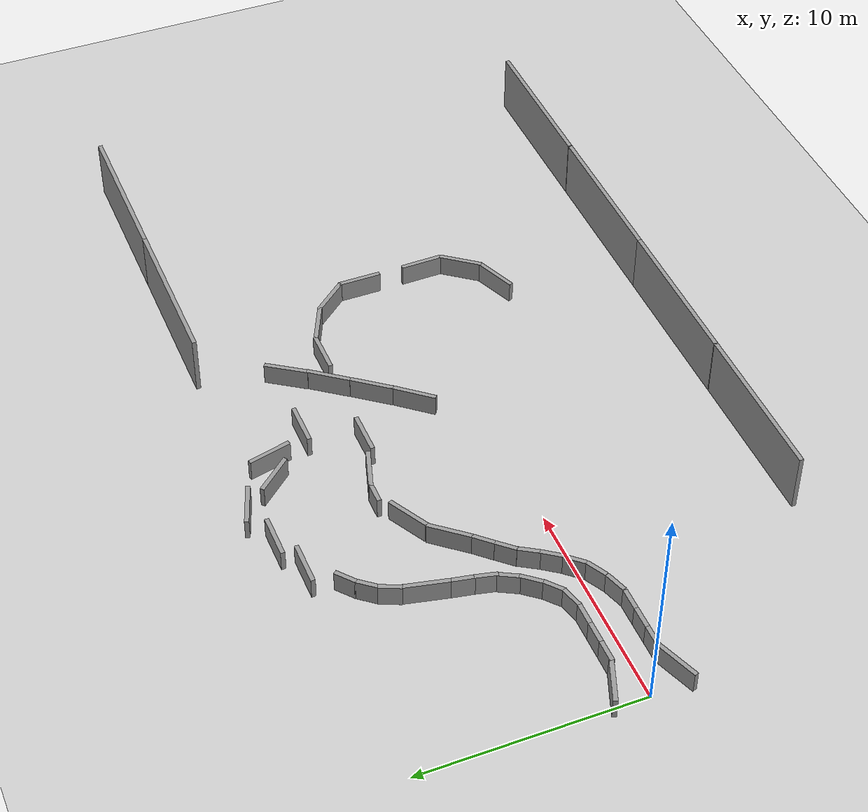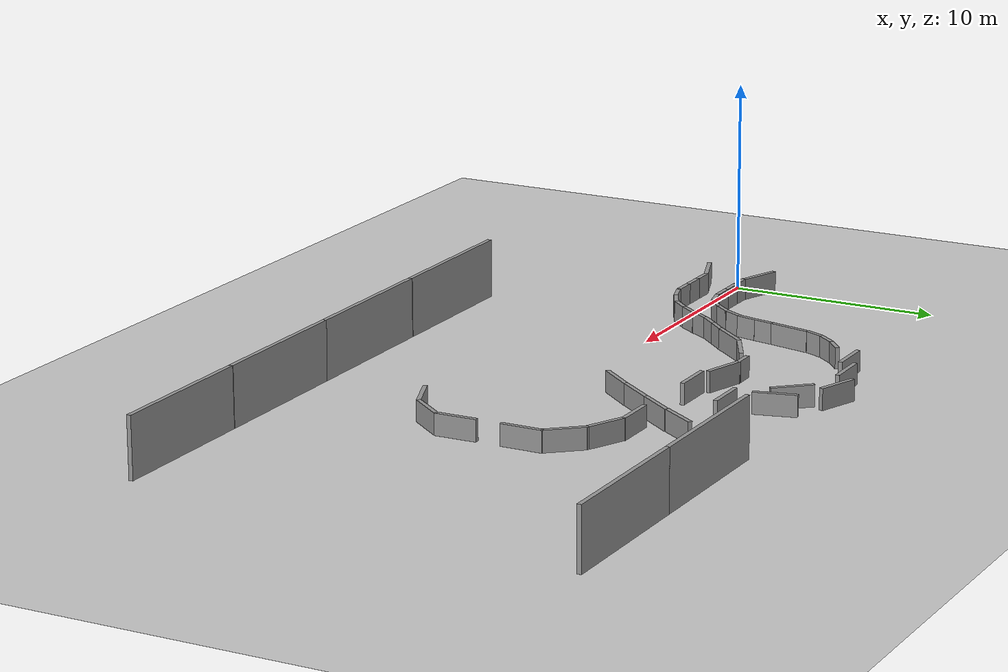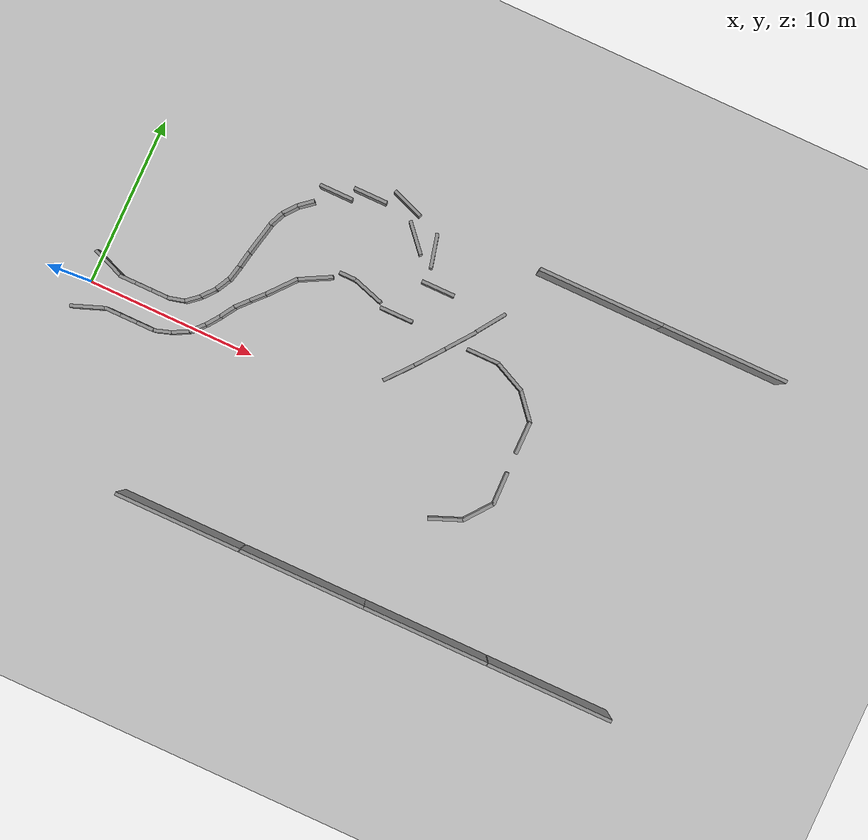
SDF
<sdf version="1.4">
 <world name="default">
  <light name="sun" type="directional">
   <pose>0 0 10 0 -0 0</pose>
   <diffuse>0.8 0.8 0.8 1</diffuse>
   <specular>0.2 0.2 0.2 1</specular>
   <attenuation>
    <range>1000</range>
    <constant>0.9</constant>
    <linear>0.01</linear>
    <quadratic>0.001</quadratic>
   </attenuation>
   <direction>-0.5 0.1 -0.9</direction>
  </light>
  <model name="ground_plane">
   <static>1</static>
   <link name="link">
    <collision name="collision">
     <geometry><plane><normal>0 0 1</normal><size>100 100</size></plane></geometry>
     <surface><friction><ode><mu>100</mu><mu2>50</mu2></ode></friction></surface>
    </collision>
    <visual name="visual">
     <cast_shadows>0</cast_shadows>
     <geometry><plane><normal>0 0 1</normal><size>100 100</size></plane></geometry>
     <material>
      <script><uri>file://media/materials/scripts/gazebo.material</uri><name>Gazebo/Grey</name></script>
     </material>
    </visual>
    <velocity_decay><linear>0</linear><angular>0</angular></velocity_decay>
   </link>
  </model>
  <physics type="ode">
   <max_step_size>0.001</max_step_size>
   <real_time_factor>1</real_time_factor>
   <real_time_update_rate>1000</real_time_update_rate>
   <gravity>0 0 -9.8</gravity>
  </physics>
  <scene><ambient>0.4 0.4 0.4 1</ambient><background>0.7 0.7 0.7 1</background><shadows>1</shadows></scene>
  <spherical_coordinates>
   <surface_model>EARTH_WGS84</surface_model>
   <latitude_deg>0</latitude_deg>
   <longitude_deg>0</longitude_deg>
   <elevation>0</elevation>
   <heading_deg>0</heading_deg>
  </spherical_coordinates>
  <model name="grey_wall">
   <static>1</static>
   <link name="link">
    <pose>0 0 0.5 0 -0 0</pose>
    <collision name="collision"><geometry><box><size>1 0.2 1</size></box></geometry></collision>
    <visual name="visual">
     <cast_shadows>0</cast_shadows>
     <geometry><box><size>1 0.2 1</size></box></geometry>
     <material>
      <script>
       <uri>model://grey_wall/materials/scripts</uri>
       <uri>model://grey_wall/materials/textures</uri>
       <name>vrc/grey_wall</name>
      </script>
     </material>
    </visual>
    <velocity_decay><linear>0</linear><angular>0</angular></velocity_decay>
   </link>
   <pose>2 1 0 0 -0 0</pose>
  </model>
  <model name="grey_wall_1">
   <static>1</static>
   <link name="link">
    <pose>0 0 0.5 0 -0 0</pose>
    <collision name="collision"><geometry><box><size>1 0.2 1</size></box></geometry></collision>
    <visual name="visual">
     <cast_shadows>0</cast_shadows>
     <geometry><box><size>1 0.2 1</size></box></geometry>
     <material>
      <script>
       <uri>model://grey_wall/materials/scripts</uri>
       <uri>model://grey_wall/materials/textures</uri>
       <name>vrc/grey_wall</name>
      </script>
     </material>
    </visual>
    <velocity_decay><linear>0</linear><angular>0</angular></velocity_decay>
   </link>
   <pose>2 -1 0 0 -0 0</pose>
  </model>
  <model name="grey_wall_2">
   <static>1</static>
   <link name="link">
    <pose>0 0 0.5 0 -0 0</pose>
    <collision name="collision"><geometry><box><size>1 0.2 1</size></box></geometry></collision>
    <visual name="visual">
     <cast_shadows>0</cast_shadows>
     <geometry><box><size>1 0.2 1</size></box></geometry>
     <material>
      <script>
       <uri>model://grey_wall/materials/scripts</uri>
       <uri>model://grey_wall/materials/textures</uri>
       <name>vrc/grey_wall</name>
      </script>
     </material>
    </visual>
    <velocity_decay><linear>0</linear><angular>0</angular></velocity_decay>
   </link>
   <pose>3 -1 0 0 -0 0</pose>
  </model>
  <model name="grey_wall_3">
   <static>1</static>
   <link name="link">
    <pose>0 0 0.5 0 -0 0</pose>
    <collision name="collision"><geometry><box><size>1 0.2 1</size></box></geometry></collision>
    <visual name="visual">
     <cast_shadows>0</cast_shadows>
     <geometry><box><size>1 0.2 1</size></box></geometry>
     <material>
      <script>
       <uri>model://grey_wall/materials/scripts</uri>
       <uri>model://grey_wall/materials/textures</uri>
       <name>vrc/grey_wall</name>
      </script>
     </material>
    </visual>
    <velocity_decay><linear>0</linear><angular>0</angular></velocity_decay>
   </link>
   <pose>3 1 0 0 -0 0</pose>
  </model>
  <model name="grey_wall_4">
   <static>1</static>
   <link name="link">
    <pose>0 0 0.5 0 -0 0</pose>
    <collision name="collision"><geometry><box><size>1 0.2 1</size></box></geometry></collision>
    <visual name="visual">
     <cast_shadows>0</cast_shadows>
     <geometry><box><size>1 0.2 1</size></box></geometry>
     <material>
      <script>
       <uri>model://grey_wall/materials/scripts</uri>
       <uri>model://grey_wall/materials/textures</uri>
       <name>vrc/grey_wall</name>
      </script>
     </material>
    </visual>
    <velocity_decay><linear>0</linear><angular>0</angular></velocity_decay>
   </link>
   <pose>4 -1 0 0 -0 0</pose>
  </model>
  <model name="grey_wall_5">
   <static>1</static>
   <link name="link">
    <pose>0 0 0.5 0 -0 0</pose>
    <collision name="collision"><geometry><box><size>1 0.2 1</size></box></geometry></collision>
    <visual name="visual">
     <cast_shadows>0</cast_shadows>
     <geometry><box><size>1 0.2 1</size></box></geometry>
     <material>
      <script>
       <uri>model://grey_wall/materials/scripts</uri>
       <uri>model://grey_wall/materials/textures</uri>
       <name>vrc/grey_wall</name>
      </script>
     </material>
    </visual>
    <velocity_decay><linear>0</linear><angular>0</angular></velocity_decay>
   </link>
   <pose>4 1 0 0 -0 0</pose>
  </model>
  <model name="grey_wall_6">
   <static>1</static>
   <link name="link">
    <pose>0 0 0.5 0 -0 0</pose>
    <collision name="collision"><geometry><box><size>1 0.2 1</size></box></geometry></collision>
    <visual name="visual">
     <cast_shadows>0</cast_shadows>
     <geometry><box><size>1 0.2 1</size></box></geometry>
     <material>
      <script>
       <uri>model://grey_wall/materials/scripts</uri>
       <uri>model://grey_wall/materials/textures</uri>
       <name>vrc/grey_wall</name>
      </script>
     </material>
    </visual>
    <velocity_decay><linear>0</linear><angular>0</angular></velocity_decay>
   </link>
   <pose>5.01734 -0.848768 0 0 -0 0.314202</pose>
  </model>
  <model name="grey_wall_7">
   <static>1</static>
   <link name="link">
    <pose>0 0 0.5 0 -0 0</pose>
    <collision name="collision"><geometry><box><size>1 0.2 1</size></box></geometry></collision>
    <visual name="visual">
     <cast_shadows>0</cast_shadows>
     <geometry><box><size>1 0.2 1</size></box></geometry>
     <material>
      <script>
       <uri>model://grey_wall/materials/scripts</uri>
       <uri>model://grey_wall/materials/textures</uri>
       <name>vrc/grey_wall</name>
      </script>
     </material>
    </visual>
    <velocity_decay><linear>0</linear><angular>0</angular></velocity_decay>
   </link>
   <pose>4.95446 1.11053 0 0 -0 0.247876</pose>
  </model>
  <model name="grey_wall_8">
   <static>1</static>
   <link name="link">
    <pose>0 0 0.5 0 -0 0</pose>
    <collision name="collision"><geometry><box><size>1 0.2 1</size></box></geometry></collision>
    <visual name="visual">
     <cast_shadows>0</cast_shadows>
     <geometry><box><size>1 0.2 1</size></box></geometry>
     <material>
      <script>
       <uri>model://grey_wall/materials/scripts</uri>
       <uri>model://grey_wall/materials/textures</uri>
       <name>vrc/grey_wall</name>
      </script>
     </material>
    </visual>
    <velocity_decay><linear>0</linear><angular>0</angular></velocity_decay>
   </link>
   <pose>5.94371 -0.455026 0 0 -0 0.490034</pose>
  </model>
  <model name="grey_wall_9">
   <static>1</static>
   <link name="link">
    <pose>0 0 0.5 0 -0 0</pose>
    <collision name="collision"><geometry><box><size>1 0.2 1</size></box></geometry></collision>
    <visual name="visual">
     <cast_shadows>0</cast_shadows>
     <geometry><box><size>1 0.2 1</size></box></geometry>
     <material>
      <script>
       <uri>model://grey_wall/materials/scripts</uri>
       <uri>model://grey_wall/materials/textures</uri>
       <name>vrc/grey_wall</name>
      </script>
     </material>
    </visual>
    <velocity_decay><linear>0</linear><angular>0</angular></velocity_decay>
   </link>
   <pose>5.78683 1.528 0 0 -0 0.704091</pose>
  </model>
  <model name="grey_wall_10">
   <static>1</static>
   <link name="link">
    <pose>0 0 0.5 0 -0 0</pose>
    <collision name="collision"><geometry><box><size>1 0.2 1</size></box></geometry></collision>
    <visual name="visual">
     <cast_shadows>0</cast_shadows>
     <geometry><box><size>1 0.2 1</size></box></geometry>
     <material>
      <script>
       <uri>model://grey_wall/materials/scripts</uri>
       <uri>model://grey_wall/materials/textures</uri>
       <name>vrc/grey_wall</name>
      </script>
     </material>
    </visual>
    <velocity_decay><linear>0</linear><angular>0</angular></velocity_decay>
   </link>
   <pose>6.71659 0.147546 0 0 -0 0.835488</pose>
  </model>
  <model name="grey_wall_11">
   <static>1</static>
   <link name="link">
    <pose>0 0 0.5 0 -0 0</pose>
    <collision name="collision"><geometry><box><size>1 0.2 1</size></box></geometry></collision>
    <visual name="visual">
     <cast_shadows>0</cast_shadows>
     <geometry><box><size>1 0.2 1</size></box></geometry>
     <material>
      <script>
       <uri>model://grey_wall/materials/scripts</uri>
       <uri>model://grey_wall/materials/textures</uri>
       <name>vrc/grey_wall</name>
      </script>
     </material>
    </visual>
    <velocity_decay><linear>0</linear><angular>0</angular></velocity_decay>
   </link>
   <pose>6.44136 2.2078 0 0 -0 0.880043</pose>
  </model>
  <model name="grey_wall_0">
   <static>1</static>
   <link name="link">
    <pose>0 0 0.5 0 -0 0</pose>
    <collision name="collision"><geometry><box><size>1 0.2 1</size></box></geometry></collision>
    <visual name="visual">
     <cast_shadows>0</cast_shadows>
     <geometry><box><size>1 0.2 1</size></box></geometry>
     <material>
      <script>
       <uri>model://grey_wall/materials/scripts</uri>
       <uri>model://grey_wall/materials/textures</uri>
       <name>vrc/grey_wall</name>
      </script>
     </material>
    </visual>
    <velocity_decay><linear>0</linear><angular>0</angular></velocity_decay>
   </link>
   <pose>7.33347 0.891377 0 0 -0 0.944963</pose>
  </model>
  <model name="grey_wall_12">
   <static>1</static>
   <link name="link">
    <pose>0 0 0.5 0 -0 0</pose>
    <collision name="collision"><geometry><box><size>1 0.2 1</size></box></geometry></collision>
    <visual name="visual">
     <cast_shadows>0</cast_shadows>
     <geometry><box><size>1 0.2 1</size></box></geometry>
     <material>
      <script>
       <uri>model://grey_wall/materials/scripts</uri>
       <uri>model://grey_wall/materials/textures</uri>
       <name>vrc/grey_wall</name>
      </script>
     </material>
    </visual>
    <velocity_decay><linear>0</linear><angular>0</angular></velocity_decay>
   </link>
   <pose>6.93852 2.95464 0 0 -0 1.07819</pose>
  </model>
  <model name="grey_wall_13">
   <static>1</static>
   <link name="link">
    <pose>0 0 0.5 0 -0 0</pose>
    <collision name="collision"><geometry><box><size>1 0.2 1</size></box></geometry></collision>
    <visual name="visual">
     <cast_shadows>0</cast_shadows>
     <geometry><box><size>1 0.2 1</size></box></geometry>
     <material>
      <script>
       <uri>model://grey_wall/materials/scripts</uri>
       <uri>model://grey_wall/materials/textures</uri>
       <name>vrc/grey_wall</name>
      </script>
     </material>
    </visual>
    <velocity_decay><linear>0</linear><angular>0</angular></velocity_decay>
   </link>
   <pose>7.86044 1.67629 0 0 -0 1.01143</pose>
  </model>
  <model name="grey_wall_14">
   <static>1</static>
   <link name="link">
    <pose>0 0 0.5 0 -0 0</pose>
    <collision name="collision"><geometry><box><size>1 0.2 1</size></box></geometry></collision>
    <visual name="visual">
     <cast_shadows>0</cast_shadows>
     <geometry><box><size>1 0.2 1</size></box></geometry>
     <material>
      <script>
       <uri>model://grey_wall/materials/scripts</uri>
       <uri>model://grey_wall/materials/textures</uri>
       <name>vrc/grey_wall</name>
      </script>
     </material>
    </visual>
    <velocity_decay><linear>0</linear><angular>0</angular></velocity_decay>
   </link>
   <pose>8.43573 2.44586 0 0 -0 0.825692</pose>
  </model>
  <model name="grey_wall_15">
   <static>1</static>
   <link name="link">
    <pose>0 0 0.5 0 -0 0</pose>
    <collision name="collision"><geometry><box><size>1 0.2 1</size></box></geometry></collision>
    <visual name="visual">
     <cast_shadows>0</cast_shadows>
     <geometry><box><size>1 0.2 1</size></box></geometry>
     <material>
      <script>
       <uri>model://grey_wall/materials/scripts</uri>
       <uri>model://grey_wall/materials/textures</uri>
       <name>vrc/grey_wall</name>
      </script>
     </material>
    </visual>
    <velocity_decay><linear>0</linear><angular>0</angular></velocity_decay>
   </link>
   <pose>7.287 3.81575 0 0 -0 1.34265</pose>
  </model>
  <model name="grey_wall_16">
   <static>1</static>
   <link name="link">
    <pose>0 0 0.5 0 -0 0</pose>
    <collision name="collision"><geometry><box><size>1 0.2 1</size></box></geometry></collision>
    <visual name="visual">
     <cast_shadows>0</cast_shadows>
     <geometry><box><size>1 0.2 1</size></box></geometry>
     <material>
      <script>
       <uri>model://grey_wall/materials/scripts</uri>
       <uri>model://grey_wall/materials/textures</uri>
       <name>vrc/grey_wall</name>
      </script>
     </material>
    </visual>
    <velocity_decay><linear>0</linear><angular>0</angular></velocity_decay>
   </link>
   <pose>9.09227 3.15251 0 0 -0 0.813159</pose>
  </model>
  <model name="grey_wall_17">
   <static>1</static>
   <link name="link">
    <pose>0 0 0.5 0 -0 0</pose>
    <collision name="collision"><geometry><box><size>1 0.2 1</size></box></geometry></collision>
    <visual name="visual">
     <cast_shadows>0</cast_shadows>
     <geometry><box><size>1 0.2 1</size></box></geometry>
     <material>
      <script>
       <uri>model://grey_wall/materials/scripts</uri>
       <uri>model://grey_wall/materials/textures</uri>
       <name>vrc/grey_wall</name>
      </script>
     </material>
    </visual>
    <velocity_decay><linear>0</linear><angular>0</angular></velocity_decay>
   </link>
   <pose>7.48265 4.75193 0 0 -0 1.38405</pose>
  </model>
  <model name="grey_wall_18">
   <static>1</static>
   <link name="link">
    <pose>0 0 0.5 0 -0 0</pose>
    <collision name="collision"><geometry><box><size>1 0.2 1</size></box></geometry></collision>
    <visual name="visual">
     <cast_shadows>0</cast_shadows>
     <geometry><box><size>2 0.2 1</size></box></geometry>
     <material>
      <script>
       <uri>model://grey_wall/materials/scripts</uri>
       <uri>model://grey_wall/materials/textures</uri>
       <name>vrc/grey_wall</name>
      </script>
     </material>
    </visual>
    <velocity_decay><linear>0</linear><angular>0</angular></velocity_decay>
   </link>
   <pose>10.0402 4.23818 0 0 -0 0.873095</pose>
  </model>
  <model name="grey_wall_19">
   <static>1</static>
   <link name="link">
    <pose>0 0 0.5 0 -0 0</pose>
    <collision name="collision"><geometry><box><size>1 0.2 1</size></box></geometry></collision>
    <visual name="visual">
     <cast_shadows>0</cast_shadows>
     <geometry><box><size>2 0.2 1</size></box></geometry>
     <material>
      <script>
       <uri>model://grey_wall/materials/scripts</uri>
       <uri>model://grey_wall/materials/textures</uri>
       <name>vrc/grey_wall</name>
      </script>
     </material>
    </visual>
    <velocity_decay><linear>0</linear><angular>0</angular></velocity_decay>
   </link>
   <pose>7.78888 6.19975 0 0 -0 1.3546</pose>
  </model>
  <model name="grey_wall_20">
   <static>1</static>
   <link name="link">
    <pose>0 0 0.5 0 -0 0</pose>
    <collision name="collision"><geometry><box><size>1 0.2 1</size></box></geometry></collision>
    <visual name="visual">
     <cast_shadows>0</cast_shadows>
     <geometry><box><size>1 0.2 1</size></box></geometry>
     <material>
      <script>
       <uri>model://grey_wall/materials/scripts</uri>
       <uri>model://grey_wall/materials/textures</uri>
       <name>vrc/grey_wall</name>
      </script>
     </material>
    </visual>
    <velocity_decay><linear>0</linear><angular>0</angular></velocity_decay>
   </link>
   <pose>8.17724 7.60588 0 0 -0 1.15349</pose>
  </model>
  <model name="grey_wall_21">
   <static>1</static>
   <link name="link">
    <pose>0 0 0.5 0 -0 0</pose>
    <collision name="collision"><geometry><box><size>1 0.2 1</size></box></geometry></collision>
    <visual name="visual">
     <cast_shadows>0</cast_shadows>
     <geometry><box><size>1 0.2 1</size></box></geometry>
     <material>
      <script>
       <uri>model://grey_wall/materials/scripts</uri>
       <uri>model://grey_wall/materials/textures</uri>
       <name>vrc/grey_wall</name>
      </script>
     </material>
    </visual>
    <velocity_decay><linear>0</linear><angular>0</angular></velocity_decay>
   </link>
   <pose>8.66935 8.39932 0 0 -0 0.889007</pose>
  </model>
  <model name="grey_wall_22">
   <static>1</static>
   <link name="link">
    <pose>0 0 0.5 0 -0 0</pose>
    <collision name="collision"><geometry><box><size>1 0.2 1</size></box></geometry></collision>
    <visual name="visual">
     <cast_shadows>0</cast_shadows>
     <geometry><box><size>1 0.2 1</size></box></geometry>
     <material>
      <script>
       <uri>model://grey_wall/materials/scripts</uri>
       <uri>model://grey_wall/materials/textures</uri>
       <name>vrc/grey_wall</name>
      </script>
     </material>
    </visual>
    <velocity_decay><linear>0</linear><angular>0</angular></velocity_decay>
   </link>
   <pose>9.33151 9.06855 0 0 -0 0.690595</pose>
  </model>
  <model name="grey_wall_23">
   <static>1</static>
   <link name="link">
    <pose>0 0 0.5 0 -0 0</pose>
    <collision name="collision"><geometry><box><size>1 0.2 1</size></box></geometry></collision>
    <visual name="visual">
     <cast_shadows>0</cast_shadows>
     <geometry><box><size>2 0.2 1</size></box></geometry>
     <material>
      <script>
       <uri>model://grey_wall/materials/scripts</uri>
       <uri>model://grey_wall/materials/textures</uri>
       <name>vrc/grey_wall</name>
      </script>
     </material>
    </visual>
    <velocity_decay><linear>0</linear><angular>0</angular></velocity_decay>
   </link>
   <pose>10.6199 10.3484 0 0 -0 0</pose>
  </model>
  <model name="grey_wall_24">
   <static>1</static>
   <link name="link">
    <pose>0 0 0.5 0 -0 0</pose>
    <collision name="collision"><geometry><box><size>1 0.2 1</size></box></geometry></collision>
    <visual name="visual">
     <cast_shadows>0</cast_shadows>
     <geometry><box><size>2 0.2 1</size></box></geometry>
     <material>
      <script>
       <uri>model://grey_wall/materials/scripts</uri>
       <uri>model://grey_wall/materials/textures</uri>
       <name>vrc/grey_wall</name>
      </script>
     </material>
    </visual>
    <velocity_decay><linear>0</linear><angular>0</angular></velocity_decay>
   </link>
   <pose>11.5812 5.46661 0 0 -0 0.49252</pose>
  </model>
  <model name="grey_wall_25">
   <static>1</static>
   <link name="link">
    <pose>0 0 0.5 0 -0 0</pose>
    <collision name="collision"><geometry><box><size>1 0.2 1</size></box></geometry></collision>
    <visual name="visual">
     <cast_shadows>0</cast_shadows>
     <geometry><box><size>1 0.2 1</size></box></geometry>
     <material>
      <script>
       <uri>model://grey_wall/materials/scripts</uri>
       <uri>model://grey_wall/materials/textures</uri>
       <name>vrc/grey_wall</name>
      </script>
     </material>
    </visual>
    <velocity_decay><linear>0</linear><angular>0</angular></velocity_decay>
   </link>
   <pose>13.1708 6.3273 0 0 -0 0</pose>
  </model>
  <model name="grey_wall_26">
   <static>1</static>
   <link name="link">
    <pose>0 0 0.5 0 -0 0</pose>
    <collision name="collision"><geometry><box><size>1 0.2 1</size></box></geometry></collision>
    <visual name="visual">
     <cast_shadows>0</cast_shadows>
     <geometry><box><size>2 0.2 1</size></box></geometry>
     <material>
      <script>
       <uri>model://grey_wall/materials/scripts</uri>
       <uri>model://grey_wall/materials/textures</uri>
       <name>vrc/grey_wall</name>
      </script>
     </material>
    </visual>
    <velocity_decay><linear>0</linear><angular>0</angular></velocity_decay>
   </link>
   <pose>12.4497 10.9908 0 0 -0 0</pose>
  </model>
  <model name="grey_wall_27">
   <static>1</static>
   <link name="link">
    <pose>0 0 0.5 0 -0 0</pose>
    <collision name="collision"><geometry><box><size>1 0.2 1</size></box></geometry></collision>
    <visual name="visual">
     <cast_shadows>0</cast_shadows>
     <geometry><box><size>2 0.2 1</size></box></geometry>
     <material>
      <script>
       <uri>model://grey_wall/materials/scripts</uri>
       <uri>model://grey_wall/materials/textures</uri>
       <name>vrc/grey_wall</name>
      </script>
     </material>
    </visual>
    <velocity_decay><linear>0</linear><angular>0</angular></velocity_decay>
   </link>
   <pose>14.5385 6.04554 0 0 0 -0.303836</pose>
  </model>
  <model name="grey_wall_28">
   <static>1</static>
   <link name="link">
    <pose>0 0 0.5 0 -0 0</pose>
    <collision name="collision"><geometry><box><size>1 0.2 1</size></box></geometry></collision>
    <visual name="visual">
     <cast_shadows>0</cast_shadows>
     <geometry><box><size>2 0.2 1</size></box></geometry>
     <material>
      <script>
       <uri>model://grey_wall/materials/scripts</uri>
       <uri>model://grey_wall/materials/textures</uri>
       <name>vrc/grey_wall</name>
      </script>
     </material>
    </visual>
    <velocity_decay><linear>0</linear><angular>0</angular></velocity_decay>
   </link>
   <pose>14.5414 11.4592 0 0 0 -0.354403</pose>
  </model>
  <model name="grey_wall_29">
   <static>1</static>
   <link name="link">
    <pose>0 0 0.5 0 -0 0</pose>
    <collision name="collision"><geometry><box><size>1 0.2 1</size></box></geometry></collision>
    <visual name="visual">
     <cast_shadows>0</cast_shadows>
     <geometry><box><size>2 0.2 1</size></box></geometry>
     <material>
      <script>
       <uri>model://grey_wall/materials/scripts</uri>
       <uri>model://grey_wall/materials/textures</uri>
       <name>vrc/grey_wall</name>
      </script>
     </material>
    </visual>
    <velocity_decay><linear>0</linear><angular>0</angular></velocity_decay>
   </link>
   <pose>15.7503 9.87719 0 0 0 -0.848354</pose>
  </model>
  <model name="grey_wall_30">
   <static>1</static>
   <link name="link">
    <pose>0 0 0.5 0 -0 0</pose>
    <collision name="collision"><geometry><box><size>1 0.2 1</size></box></geometry></collision>
    <visual name="visual">
     <cast_shadows>0</cast_shadows>
     <geometry><box><size>2 0.2 1</size></box></geometry>
     <material>
      <script>
       <uri>model://grey_wall/materials/scripts</uri>
       <uri>model://grey_wall/materials/textures</uri>
       <name>vrc/grey_wall</name>
      </script>
     </material>
    </visual>
    <velocity_decay><linear>0</linear><angular>0</angular></velocity_decay>
   </link>
   <pose>16.5755 5.49853 0 0 -0 0</pose>
  </model>
  <model name="grey_wall_31">
   <static>1</static>
   <link name="link">
    <pose>0 0 0.5 0 -0 0</pose>
    <collision name="collision"><geometry><box><size>1 0.2 1</size></box></geometry></collision>
    <visual name="visual">
     <cast_shadows>0</cast_shadows>
     <geometry><box><size>2 0.2 1</size></box></geometry>
     <material>
      <script>
       <uri>model://grey_wall/materials/scripts</uri>
       <uri>model://grey_wall/materials/textures</uri>
       <name>vrc/grey_wall</name>
      </script>
     </material>
    </visual>
    <velocity_decay><linear>0</linear><angular>0</angular></velocity_decay>
   </link>
   <pose>19.2936 4.11796 0 0 -0 0.912425</pose>
  </model>
  <model name="grey_wall_32">
   <static>1</static>
   <link name="link">
    <pose>0 0 0.5 0 -0 0</pose>
    <collision name="collision"><geometry><box><size>1 0.2 1</size></box></geometry></collision>
    <visual name="visual">
     <cast_shadows>0</cast_shadows>
     <geometry><box><size>2 0.2 1</size></box></geometry>
     <material>
      <script>
       <uri>model://grey_wall/materials/scripts</uri>
       <uri>model://grey_wall/materials/textures</uri>
       <name>vrc/grey_wall</name>
      </script>
     </material>
    </visual>
    <velocity_decay><linear>0</linear><angular>0</angular></velocity_decay>
   </link>
   <pose>20.4843 5.68639 0 0 -0 0.922661</pose>
  </model>
  <model name="grey_wall_33">
   <static>1</static>
   <link name="link">
    <pose>0 0 0.5 0 -0 0</pose>
    <collision name="collision"><geometry><box><size>1 0.2 1</size></box></geometry></collision>
    <visual name="visual">
     <cast_shadows>0</cast_shadows>
     <geometry><box><size>2 0.2 1</size></box></geometry>
     <material>
      <script>
       <uri>model://grey_wall/materials/scripts</uri>
       <uri>model://grey_wall/materials/textures</uri>
       <name>vrc/grey_wall</name>
      </script>
     </material>
    </visual>
    <velocity_decay><linear>0</linear><angular>0</angular></velocity_decay>
   </link>
   <pose>21.5995 7.27009 0 0 -0 0.970852</pose>
  </model>
  <model name="grey_wall_34">
   <static>1</static>
   <link name="link">
    <pose>0 0 0.5 0 -0 0</pose>
    <collision name="collision"><geometry><box><size>1 0.2 1</size></box></geometry></collision>
    <visual name="visual">
     <cast_shadows>0</cast_shadows>
     <geometry><box><size>2 0.2 1</size></box></geometry>
     <material>
      <script>
       <uri>model://grey_wall/materials/scripts</uri>
       <uri>model://grey_wall/materials/textures</uri>
       <name>vrc/grey_wall</name>
      </script>
     </material>
    </visual>
    <velocity_decay><linear>0</linear><angular>0</angular></velocity_decay>
   </link>
   <pose>18.0731 2.5895 0 0 -0 0.874712</pose>
  </model>
  <model name="grey_wall_35">
   <static>1</static>
   <link name="link">
    <pose>0 0 0.5 0 -0 0</pose>
    <collision name="collision"><geometry><box><size>1 0.2 1</size></box></geometry></collision>
    <visual name="visual">
     <cast_shadows>0</cast_shadows>
     <geometry><box><size>2 0.2 1</size></box></geometry>
     <material>
      <script>
       <uri>model://grey_wall/materials/scripts</uri>
       <uri>model://grey_wall/materials/textures</uri>
       <name>vrc/grey_wall</name>
      </script>
     </material>
    </visual>
    <velocity_decay><linear>0</linear><angular>0</angular></velocity_decay>
   </link>
   <pose>0.60257 -1.35496 0 0 -0 0.359717</pose>
  </model>
  <model name="grey_wall_36">
   <static>1</static>
   <link name="link">
    <pose>0 0 0.5 0 -0 0</pose>
    <collision name="collision"><geometry><box><size>1 0.2 1</size></box></geometry></collision>
    <visual name="visual">
     <cast_shadows>0</cast_shadows>
     <geometry><box><size>2 0.2 1</size></box></geometry>
     <material>
      <script>
       <uri>model://grey_wall/materials/scripts</uri>
       <uri>model://grey_wall/materials/textures</uri>
       <name>vrc/grey_wall</name>
      </script>
     </material>
    </visual>
    <velocity_decay><linear>0</linear><angular>0</angular></velocity_decay>
   </link>
   <pose>0.630631 1.37727 0 0 0 -0.366318</pose>
  </model>
  <model name="grey_wall_38">
   <static>1</static>
   <link name="link">
    <pose>0 0 0.5 0 -0 0</pose>
    <collision name="collision"><geometry><box><size>1 0.2 1</size></box></geometry></collision>
    <visual name="visual">
     <cast_shadows>0</cast_shadows>
     <geometry><box><size>2 0.2 1</size></box></geometry>
     <material>
      <script>
       <uri>model://grey_wall/materials/scripts</uri>
       <uri>model://grey_wall/materials/textures</uri>
       <name>vrc/grey_wall</name>
      </script>
     </material>
    </visual>
    <velocity_decay><linear>0</linear><angular>0</angular></velocity_decay>
   </link>
   <pose>17.0066 9.64562 0 0 0 -1.33172</pose>
  </model>
  <model name="grey_wall_39">
   <static>1</static>
   <link name="link">
    <pose>0 0 0.5 0 -0 0</pose>
    <collision name="collision"><geometry><box><size>1 0.2 1</size></box></geometry></collision>
    <visual name="visual">
     <cast_shadows>0</cast_shadows>
     <geometry><box><size>2 0.2 1</size></box></geometry>
     <material>
      <script>
       <uri>model://grey_wall/materials/scripts</uri>
       <uri>model://grey_wall/materials/textures</uri>
       <name>vrc/grey_wall</name>
      </script>
     </material>
    </visual>
    <velocity_decay><linear>0</linear><angular>0</angular></velocity_decay>
   </link>
   <pose>18.099 7.81182 0 0 -0 0</pose>
  </model>
  <model name="grey_wall_40">
   <static>1</static>
   <link name="link">
    <pose>0 0 0.5 0 -0 0</pose>
    <collision name="collision"><geometry><box><size>1 0.2 1</size></box></geometry></collision>
    <visual name="visual">
     <cast_shadows>0</cast_shadows>
     <geometry><box><size>2 0.2 1</size></box></geometry>
     <material>
      <script>
       <uri>model://grey_wall/materials/scripts</uri>
       <uri>model://grey_wall/materials/textures</uri>
       <name>vrc/grey_wall</name>
      </script>
     </material>
    </visual>
    <velocity_decay><linear>0</linear><angular>0</angular></velocity_decay>
   </link>
   <pose>25.9545 2.16272 0 0 0 -1.57042</pose>
  </model>
  <model name="grey_wall_42">
   <static>1</static>
   <link name="link">
    <pose>0 0 0.5 0 -0 0</pose>
    <collision name="collision"><geometry><box><size>1 0.2 1</size></box></geometry></collision>
    <visual name="visual">
     <cast_shadows>0</cast_shadows>
     <geometry><box><size>2 0.2 1</size></box></geometry>
     <material>
      <script>
       <uri>model://grey_wall/materials/scripts</uri>
       <uri>model://grey_wall/materials/textures</uri>
       <name>vrc/grey_wall</name>
      </script>
     </material>
    </visual>
    <velocity_decay><linear>0</linear><angular>0</angular></velocity_decay>
   </link>
   <pose>25.9879 -0.963035 0 0 0 -1.55255</pose>
  </model>
  <model name="grey_wall_37">
   <static>1</static>
   <link name="link">
    <pose>0 0 0.5 0 -0 0</pose>
    <collision name="collision"><geometry><box><size>1 0.2 1</size></box></geometry></collision>
    <visual name="visual">
     <cast_shadows>0</cast_shadows>
     <geometry><box><size>2 0.2 1</size></box></geometry>
     <material>
      <script>
       <uri>model://grey_wall/materials/scripts</uri>
       <uri>model://grey_wall/materials/textures</uri>
       <name>vrc/grey_wall</name>
      </script>
     </material>
    </visual>
    <velocity_decay><linear>0</linear><angular>0</angular></velocity_decay>
   </link>
   <pose>25.4124 -2.68024 0 0 -0 0.912769</pose>
  </model>
  <model name="grey_wall_41">
   <static>1</static>
   <link name="link">
    <pose>0 0 0.5 0 -0 0</pose>
    <collision name="collision"><geometry><box><size>1 0.2 1</size></box></geometry></collision>
    <visual name="visual">
     <cast_shadows>0</cast_shadows>
     <geometry><box><size>2 0.2 1</size></box></geometry>
     <material>
      <script>
       <uri>model://grey_wall/materials/scripts</uri>
       <uri>model://grey_wall/materials/textures</uri>
       <name>vrc/grey_wall</name>
      </script>
     </material>
    </visual>
    <velocity_decay><linear>0</linear><angular>0</angular></velocity_decay>
   </link>
   <pose>25.3212 3.84477 0 0 0 -0.868141</pose>
  </model>
  <model name="grey_wall_43">
   <static>1</static>
   <link name="link">
    <pose>0 0 0.5 0 -0 0</pose>
    <collision name="collision"><geometry><box><size>1 0.2 1</size></box></geometry></collision>
    <visual name="visual">
     <cast_shadows>0</cast_shadows>
     <geometry><box><size>2 0.2 1</size></box></geometry>
     <material>
      <script>
       <uri>model://grey_wall/materials/scripts</uri>
       <uri>model://grey_wall/materials/textures</uri>
       <name>vrc/grey_wall</name>
      </script>
     </material>
    </visual>
    <velocity_decay><linear>0</linear><angular>0</angular></velocity_decay>
   </link>
   <pose>23.8485 4.96119 0 0 0 -0.439275</pose>
  </model>
  <model name="grey_wall_44">
   <static>1</static>
   <link name="link">
    <pose>0 0 0.5 0 -0 0</pose>
    <collision name="collision"><geometry><box><size>1 0.2 1</size></box></geometry></collision>
    <visual name="visual">
     <cast_shadows>0</cast_shadows>
     <geometry><box><size>2 0.2 1</size></box></geometry>
     <material>
      <script>
       <uri>model://grey_wall/materials/scripts</uri>
       <uri>model://grey_wall/materials/textures</uri>
       <name>vrc/grey_wall</name>
      </script>
     </material>
    </visual>
    <velocity_decay><linear>0</linear><angular>0</angular></velocity_decay>
   </link>
   <pose>23.8942 -3.81304 0 0 -0 0.384523</pose>
  </model>
  <model name="grey_wall_45">
   <static>1</static>
   <link name="link">
    <pose>0 0 1.4 0 -0 0</pose>
    <collision name="collision"><geometry><box><size>7.5 0.2 2.8</size></box></geometry></collision>
    <visual name="visual">
     <cast_shadows>0</cast_shadows>
     <geometry><box><size>7.5 0.2 2.8</size></box></geometry>
     <material>
      <script>
       <uri>model://grey_wall/materials/scripts</uri>
       <uri>model://grey_wall/materials/textures</uri>
       <name>vrc/grey_wall</name>
      </script>
     </material>
    </visual>
    <velocity_decay><linear>0</linear><angular>0</angular></velocity_decay>
   </link>
   <pose>10.4515 -10 0 0 -0 0</pose>
  </model>
  <model name="grey_wall_46">
   <static>1</static>
   <link name="link">
    <pose>0 0 1.4 0 -0 0</pose>
    <collision name="collision"><geometry><box><size>7.5 0.2 2.8</size></box></geometry></collision>
    <visual name="visual">
     <cast_shadows>0</cast_shadows>
     <geometry><box><size>7.5 0.2 2.8</size></box></geometry>
     <material>
      <script>
       <uri>model://grey_wall/materials/scripts</uri>
       <uri>model://grey_wall/materials/textures</uri>
       <name>vrc/grey_wall</name>
      </script>
     </material>
    </visual>
    <velocity_decay><linear>0</linear><angular>0</angular></velocity_decay>
   </link>
   <pose>18 -10 0 0 -0 0</pose>
  </model>
  <model name="grey_wall_47">
   <static>1</static>
   <link name="link">
    <pose>0 0 1.4 0 -0 0</pose>
    <collision name="collision"><geometry><box><size>7.5 0.2 2.8</size></box></geometry></collision>
    <visual name="visual">
     <cast_shadows>0</cast_shadows>
     <geometry><box><size>7.5 0.2 2.8</size></box></geometry>
     <material>
      <script>
       <uri>model://grey_wall/materials/scripts</uri>
       <uri>model://grey_wall/materials/textures</uri>
       <name>vrc/grey_wall</name>
      </script>
     </material>
    </visual>
    <velocity_decay><linear>0</linear><angular>0</angular></velocity_decay>
   </link>
   <pose>25.4597 -10 0 0 -0 0</pose>
  </model>
  <model name="grey_wall_48">
   <static>1</static>
   <link name="link">
    <pose>0 0 1.4 0 -0 0</pose>
    <collision name="collision"><geometry><box><size>7.5 0.2 2.8</size></box></geometry></collision>
    <visual name="visual">
     <cast_shadows>0</cast_shadows>
     <geometry><box><size>7.5 0.2 2.8</size></box></geometry>
     <material>
      <script>
       <uri>model://grey_wall/materials/scripts</uri>
       <uri>model://grey_wall/materials/textures</uri>
       <name>vrc/grey_wall</name>
      </script>
     </material>
    </visual>
    <velocity_decay><linear>0</linear><angular>0</angular></velocity_decay>
   </link>
   <pose>26.5451 11 0 0 -0 0</pose>
  </model>
  <model name="grey_wall_49">
   <static>1</static>
   <link name="link">
    <pose>0 0 1.4 0 -0 0</pose>
    <collision name="collision"><geometry><box><size>7.5 0.2 2.8</size></box></geometry></collision>
    <visual name="visual">
     <cast_shadows>0</cast_shadows>
     <geometry><box><size>7.5 0.2 2.8</size></box></geometry>
     <material>
      <script>
       <uri>model://grey_wall/materials/scripts</uri>
       <uri>model://grey_wall/materials/textures</uri>
       <name>vrc/grey_wall</name>
      </script>
     </material>
    </visual>
    <velocity_decay><linear>0</linear><angular>0</angular></velocity_decay>
   </link>
   <pose>34 11 0 0 -0 0</pose>
  </model>
  <model name="grey_wall_50">
   <static>1</static>
   <link name="link">
    <pose>0 0 1.4 0 -0 0</pose>
    <collision name="collision"><geometry><box><size>7.5 0.2 2.8</size></box></geometry></collision>
    <visual name="visual">
     <cast_shadows>0</cast_shadows>
     <geometry><box><size>7.5 0.2 2.8</size></box></geometry>
     <material>
      <script>
       <uri>model://grey_wall/materials/scripts</uri>
       <uri>model://grey_wall/materials/textures</uri>
       <name>vrc/grey_wall</name>
      </script>
     </material>
    </visual>
    <velocity_decay><linear>0</linear><angular>0</angular></velocity_decay>
   </link>
   <pose>33 -10 0 0 -0 0</pose>
  </model>
  <model name="grey_wall_51">
   <static>1</static>
   <link name="link">
    <pose>0 0 0.5 0 -0 0</pose>
    <collision name="collision"><geometry><box><size>1 0.2 1</size></box></geometry></collision>
    <visual name="visual">
     <cast_shadows>0</cast_shadows>
     <geometry><box><size>2 0.2 1</size></box></geometry>
     <material>
      <script>
       <uri>model://grey_wall/materials/scripts</uri>
       <uri>model://grey_wall/materials/textures</uri>
       <name>vrc/grey_wall</name>
      </script>
     </material>
    </visual>
    <velocity_decay><linear>0</linear><angular>0</angular></velocity_decay>
   </link>
   <pose>22 5.40151 0 0 -0 0</pose>
  </model>
 </world>
</sdf>
